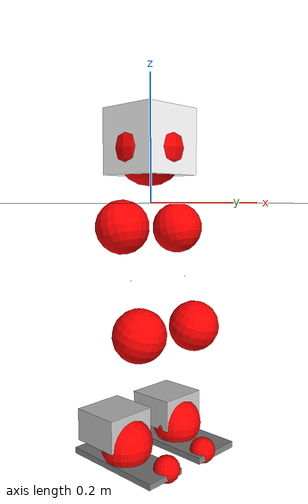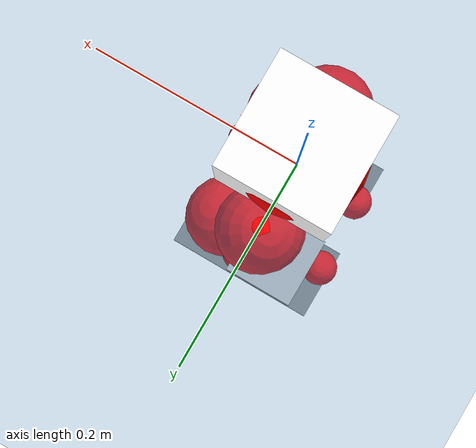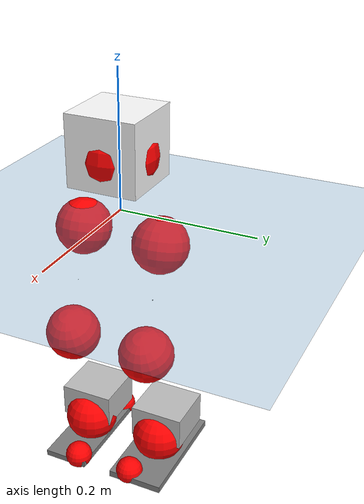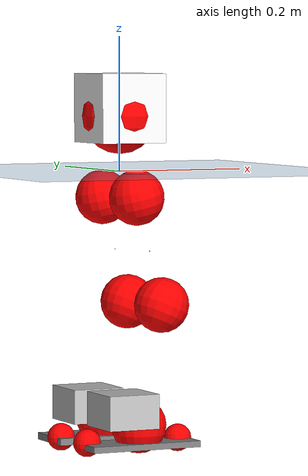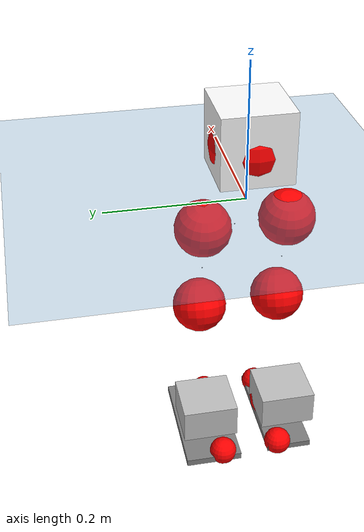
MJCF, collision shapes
<mujoco model="pi_12dof_release_v1">
  <compiler angle="radian" assetdir="assets" balanceinertia="true" inertiafromgeom="false"/>

  <option timestep="0.005" density="1.2" viscosity="2e-05"/>

  <size nkey="1"/>

  <visual>
    <quality shadowsize="8192"/>
    <map shadowclip="0.5"/>
  </visual>

  <default>
    <default class="/">
      <joint armature="0.01" damping="0.01" frictionloss="0.01"/>
      <geom contype="0" conaffinity="0" group="1" solref="-1000 -80"/>
      <site size="0.01 0.005 0.005" group="5"/>
      <general forcelimited="true" biastype="affine" gainprm="20" biasprm="0 -20 -0.5"/>
      <default class="foot">
        <geom size="0.0845 0.036 0.005" type="box" condim="6" group="4" priority="1" friction="0.9 0.2 0.2" solimp="0.015 1 0.005"/>
      </default>
      <default class="reward_collision_sphere">
        <geom group="5" rgba="1 0 0 1"/>
      </default>
    </default>
  </default>

  <asset>
    <texture type="skybox" colorspace="auto" name="//unnamed_texture_0" builtin="gradient" rgb1="0.95 0.95 0.95" rgb2="0.95 0.95 0.95" width="100" height="600"/>
    <texture type="2d" colorspace="auto" name="texplane" builtin="checker" rgb1="0.345 0.575 0.748" rgb2="0.345 0.575 0.748" markrgb="1 1 1" width="512" height="512"/>
    <material name="MatPlane" class="/" texture="texplane" texuniform="true" texrepeat="2 2" specular="0.9"/>
    <mesh name="baselink_1" class="/" file="baselink_1.STL"/>
    <mesh name="r_hip_pitch_link" class="/" file="r_hip_pitch_link.STL"/>
    <mesh name="r_hip_roll_link" class="/" file="r_hip_roll_link.STL"/>
    <mesh name="r_thigh_link" class="/" file="r_thigh_link.STL"/>
    <mesh name="r_calf_link" class="/" file="r_calf_link.STL"/>
    <mesh name="r_ankle_pitch_link" class="/" file="r_ankle_pitch_link.STL"/>
    <mesh name="r_ankle_roll_link" class="/" file="r_ankle_roll_link.STL"/>
    <mesh name="l_hip_pitch_link" class="/" file="l_hip_pitch_link.STL"/>
    <mesh name="l_hip_roll_link" class="/" file="l_hip_roll_link.STL"/>
    <mesh name="l_thigh_link" class="/" file="l_thigh_link.STL"/>
    <mesh name="l_calf_link" class="/" file="l_calf_link.STL"/>
    <mesh name="l_ankle_pitch_link" class="/" file="l_ankle_pitch_link.STL"/>
    <mesh name="l_ankle_roll_link" class="/" file="l_ankle_roll_link.STL"/>
  </asset>

  <worldbody>
    <geom name="floor" class="/" size="100 100 0.125" type="plane" group="0" material="MatPlane"/>
    <light name="toplight_shadow" class="/" pos="0 0 5" dir="0.0990148 0.0990148 -0.990148" type="directional" ambient="0.04 0.04 0.04" diffuse="0.55 0.55 0.55" specular="0.12 0.12 0.12"/>
    <light name="toplight_fill" class="/" pos="0 0 5" dir="0.0990148 0.0990148 -0.990148" type="directional" castshadow="false" ambient="0.04 0.04 0.04" diffuse="0.3 0.3 0.3" specular="0.08 0.08 0.08"/>
    <body name="trunk" pos="0.000108575 -0.00177627 0.000438961" quat="1 -4.47351e-07 8.47669e-07 1.05436e-07">
      <inertial pos="0.00149781 -0.00269025 0.0474218" quat="0.689746 0.0148812 0.000135384 0.723898" mass="2.30247" diaginertia="0.0153455 0.0030468 0.00934124"/>
      <joint name="//unnamed_joint_0" type="free"/>
      <geom name="//unnamed_geom_1" class="/" type="mesh" density="0" rgba="1 1 1 1" mesh="baselink_1"/>
      <geom name="//unnamed_geom_2" class="/" size="0.0512698 0.0512698 0.0512698" pos="0 0 0.0941107" type="box" rgba="1 1 1 1"/>
      <geom name="//unnamed_geom_3" class="reward_collision_sphere" size="0.0563967" pos="0 0 0.0823469"/>
      <site name="imu" class="/" pos="0.0081408 0.00182219 -0.00883407" size="0.010254"/>
      <camera name="track" class="/" pos="0 -1.6121 0" quat="0.707107 0.707107 0 0" mode="trackcom"/>
      <camera name="ego_camera" class="/" pos="0.0820312 0 0.211749" quat="-0.5 -0.5 0.5 0.5"/>
      <body name="r_hip_pitch_link" pos="0.000449701 -0.0157356 -0.0363259" quat="0.99217 -0.000637662 -0.12489 0.00058139">
        <inertial pos="0.000798507 -0.0448503 0.000439019" quat="-0.0194722 0.70581 -0.0269832 0.707619" mass="0.389891" diaginertia="0.000169685 3.24183e-05 0.00018819"/>
        <joint name="r_hip_pitch_joint" class="/" pos="0 0 0" axis="-0.00504047 -0.999972 -0.00544178" stiffness="0.000721005" range="-1.75076 1.24317" armature="0.0102503" damping="0.014038" frictionloss="0.0107644"/>
        <geom name="//unnamed_geom_4" class="/" type="mesh" density="0" rgba="0.75294 0.75294 0.75294 1" mesh="r_hip_pitch_link"/>
        <geom name="//unnamed_geom_5" class="/" size="0.000512698 0.000512698 0.000512698" type="box" rgba="0.75294 0.75294 0.75294 1"/>
        <body name="r_hip_roll_link" pos="-0.000297897 -0.0424002 -0.000229666" quat="1 -3.20128e-05 0.000514208 -0.000560819">
          <inertial pos="0.000486897 0.000432939 -0.072145" quat="0.703751 -0.0849996 -0.0920303 0.699314" mass="0.419198" diaginertia="0.000528846 9.52998e-05 0.000295029"/>
          <joint name="r_hip_roll_joint" class="/" pos="0 0 0" axis="-0.999992 0.000594322 -0.00394133" stiffness="0.00196402" range="-0.117737 0.537359" armature="0.00965013" damping="0.0083345" frictionloss="0.00996826"/>
          <geom name="//unnamed_geom_6" class="/" type="mesh" density="0" rgba="0.75294 0.75294 0.75294 1" mesh="r_hip_roll_link"/>
          <geom name="//unnamed_geom_7" class="/" size="0.000512698 0.000512698 0.000512698" type="box" rgba="0.75294 0.75294 0.75294 1"/>
          <geom name="//unnamed_geom_8" class="reward_collision_sphere" size="0.0410158"/>
          <body name="r_thigh_link" pos="-0.000173666 -0.00187076 -0.0813226" quat="1 5.16196e-05 -9.3786e-05 0.000231939">
            <inertial pos="0.0017744 0.000709127 -0.0584646" quat="0.73744 0.675413 9.31741e-05 -0.000181825" mass="0.121139" diaginertia="0.000191048 3.31742e-05 0.000125938"/>
            <joint name="r_thigh_joint" class="/" pos="0 0 0" axis="-0.00458929 0.00181003 -0.999988" range="-0.327356 0.59911" armature="0.0105562" damping="0.00680831" frictionloss="0.0100853"/>
            <geom name="//unnamed_geom_9" class="/" type="mesh" density="0" rgba="0.75294 0.75294 0.75294 1" mesh="r_thigh_link"/>
            <geom name="//unnamed_geom_10" class="/" size="0.000512698 0.000512698 0.000512698" type="box" rgba="0.75294 0.75294 0.75294 1"/>
            <body name="r_calf_link" pos="-0.00141735 -0.000972713 -0.0826596" quat="0.947657 -7.55207e-06 0.31929 4.0269e-05">
              <inertial pos="0.000287807 -0.00176963 -0.0830685" quat="0.999994 -0.000816631 0.000290252 0.00322755" mass="0.857076" diaginertia="0.00561765 0.00115859 0.000405098"/>
              <joint name="r_calf_joint" class="/" pos="0 0 0" axis="-0.000821054 -0.999997 -0.00251257" range="-1.59824 0.649645" armature="0.0107794" damping="0.0105375" frictionloss="0.010198"/>
              <geom name="//unnamed_geom_11" class="/" type="mesh" density="0" rgba="0.75294 0.75294 0.75294 1" mesh="r_calf_link"/>
              <geom name="//unnamed_geom_12" class="/" size="0.000512698 0.000512698 0.000512698" type="box" rgba="0.75294 0.75294 0.75294 1"/>
              <geom name="//unnamed_geom_13" class="reward_collision_sphere" size="0.0410158"/>
              <body name="r_ankle_pitch_link" pos="0.00308576 0.00300257 -0.164673" quat="0.980027 0.000160646 -0.198862 -4.21229e-05">
                <inertial pos="0.00517529 0.000310657 -0.000704338" quat="0.000447404 0.708547 -0.000787235 0.705664" mass="0.197928" diaginertia="0.000497303 7.75153e-05 0.000279711"/>
                <joint name="r_ankle_pitch_joint" class="/" pos="0 0 0" axis="-0.0125253 -0.999904 -0.00594525" range="-1.30215 0.55194" armature="0.0104873" damping="0.0143825" frictionloss="0.0107015"/>
                <geom name="//unnamed_geom_14" class="/" type="mesh" density="0" rgba="0.75294 0.75294 0.75294 1" mesh="r_ankle_pitch_link"/>
                <geom name="//unnamed_geom_15" class="/" size="0.0399904 0.0410158 0.0256349" type="box" rgba="0.75294 0.75294 0.75294 1"/>
                <body name="r_ankle_roll_link" pos="0.0809616 0.00163445 -0.00104453" quat="0.999999 -0.000666482 -0.000362696 -0.000877689">
                  <inertial pos="-0.0268101 -0.00035198 -0.0158887" quat="0.558007 0.433611 0.434111 0.55871" mass="0.563029" diaginertia="0.00175346 0.000352171 0.000630592"/>
                  <joint name="r_ankle_roll_joint" class="/" pos="0 0 0" axis="-1 -4.6529e-05 0.000337366" range="-0.202618 0.143961" armature="0.0101381" damping="0.0131018" frictionloss="0.010256"/>
                  <geom name="//unnamed_geom_16" class="/" type="mesh" density="0" rgba="0.75294 0.75294 0.75294 1" mesh="r_ankle_roll_link"/>
                  <geom name="//unnamed_geom_17" class="/" type="mesh" rgba="0.75294 0.75294 0.75294 1" mesh="r_ankle_roll_link"/>
                  <geom name="right_foot" class="foot" size="0.0863534 0.0337315 0.00461968" pos="-0.0557812 0 -0.0517609"/>
                  <geom name="//unnamed_geom_19" class="reward_collision_sphere" size="0.0410158" pos="-0.0546875 0 -0.0235277"/>
                  <geom name="//unnamed_geom_20" class="reward_collision_sphere" size="0.0205079" pos="0.0164062 0.016121 -0.0470553"/>
                  <geom name="//unnamed_geom_21" class="reward_collision_sphere" size="0.0205079" pos="-0.13125 0.016121 -0.0470553"/>
                  <site name="right_foot" class="foot" pos="-0.0557812 0 -0.0517609" size="0.010254"/>
                </body>
              </body>
            </body>
          </body>
        </body>
      </body>
      <body name="l_hip_pitch_link" pos="-0.000254139 0.0181799 -0.0384674" quat="0.992138 0.000117528 -0.125145 -0.000131771">
        <inertial pos="0.000595387 0.0412408 -0.000506621" quat="-0.0436847 0.706214 0.0305563 0.705988" mass="0.411402" diaginertia="0.000199826 3.54593e-05 0.000225918"/>
        <joint name="l_hip_pitch_joint" class="/" pos="0 0 0" axis="-0.000258151 0.999999 -0.00102146" stiffness="0.00584204" range="-1.24475 1.75718" armature="0.00992452" damping="0" frictionloss="0.0108158"/>
        <geom name="//unnamed_geom_22" class="/" type="mesh" density="0" rgba="0.75294 0.75294 0.75294 1" mesh="l_hip_pitch_link"/>
        <geom name="//unnamed_geom_23" class="/" size="0.000512698 0.000512698 0.000512698" type="box" rgba="0.75294 0.75294 0.75294 1"/>
        <body name="l_hip_roll_link" pos="-0.000195545 0.0451318 -0.00242952" quat="1 0.000200187 7.17917e-05 -0.000131608">
          <inertial pos="-0.00153498 -0.00042607 -0.0743735" quat="0.699019 -0.073023 -0.0777732 0.7071" mass="0.428072" diaginertia="0.000522683 9.27255e-05 0.00028487"/>
          <joint name="l_hip_roll_joint" class="/" pos="0 0 0" axis="-0.999977 0.00534194 0.00407603" range="-0.552018 0.11925" armature="0.0112625" damping="0.00427603" frictionloss="0.00981784"/>
          <geom name="//unnamed_geom_24" class="/" type="mesh" density="0" rgba="0.75294 0.75294 0.75294 1" mesh="l_hip_roll_link"/>
          <geom name="//unnamed_geom_25" class="/" size="0.000512698 0.000512698 0.000512698" type="box" rgba="0.75294 0.75294 0.75294 1"/>
          <geom name="//unnamed_geom_26" class="reward_collision_sphere" size="0.0410158"/>
          <body name="l_thigh_link" pos="-0.000653838 -0.00295354 -0.0813011" quat="1 0.000400136 8.85171e-05 0.000126174">
            <inertial pos="0.000152212 -0.00150424 -0.0547889" quat="0.674415 0.738349 0.001954 -0.00113825" mass="0.123498" diaginertia="0.000202768 3.22419e-05 0.000131645"/>
            <joint name="l_thigh_joint" class="/" pos="0 0 0" axis="-0.00121279 2.63887e-05 -0.999999" stiffness="0.000485528" range="-0.602256 0.301362" armature="0.00984142" damping="0.00521619" frictionloss="0.0101522"/>
            <geom name="//unnamed_geom_27" class="/" type="mesh" density="0" rgba="0.75294 0.75294 0.75294 1" mesh="l_thigh_link"/>
            <geom name="//unnamed_geom_28" class="/" size="0.000512698 0.000512698 0.000512698" type="box" rgba="0.75294 0.75294 0.75294 1"/>
            <body name="l_calf_link" pos="-9.77489e-05 -1.6229e-05 -0.0827001" quat="0.947668 -0.000643594 0.319257 -0.000848782">
              <inertial pos="-0.00068142 0.00456279 -0.0839178" quat="0.999968 -0.000581916 0.000349965 0.00798464" mass="0.886601" diaginertia="0.00565309 0.00118396 0.000407615"/>
              <joint name="l_calf_joint" class="/" pos="0 0 0" axis="0.00197993 0.999987 -0.00465604" range="-0.667894 1.66766" armature="0.00969295" damping="0.00307066" frictionloss="0.00976942"/>
              <geom name="//unnamed_geom_29" class="/" type="mesh" density="0" rgba="0.75294 0.75294 0.75294 1" mesh="l_calf_link"/>
              <geom name="//unnamed_geom_30" class="/" size="0.000512698 0.000512698 0.000512698" type="box" rgba="0.75294 0.75294 0.75294 1"/>
              <geom name="//unnamed_geom_31" class="reward_collision_sphere" size="0.0410158"/>
              <body name="l_ankle_pitch_link" pos="-0.000292077 0.00300371 -0.165012" quat="0.979987 0.000479132 -0.199058 -0.00108679">
                <inertial pos="0.00533285 -0.00311026 0.000187135" quat="0.00115802 0.705403 0.00332409 0.708798" mass="0.18942" diaginertia="0.000480925 7.51472e-05 0.000268187"/>
                <joint name="l_ankle_pitch_joint" class="/" pos="0 0 0" axis="-3.84711e-05 1 0.000208028" range="-0.547259 1.32415" armature="0.010412" damping="0.00290978" frictionloss="0.0102898"/>
                <geom name="//unnamed_geom_32" class="/" type="mesh" density="0" rgba="0.75294 0.75294 0.75294 1" mesh="l_ankle_pitch_link"/>
                <geom name="//unnamed_geom_33" class="/" size="0.0399904 0.0410158 0.0256349" type="box" rgba="0.75294 0.75294 0.75294 1"/>
                <body name="l_ankle_roll_link" pos="0.0798327 -0.000861551 0.00103331" quat="1 9.58346e-05 6.75614e-05 -4.71711e-05">
                  <inertial pos="-0.0238837 -0.000519117 -0.0160389" quat="0.558925 0.433983 0.432035 0.559114" mass="0.553265" diaginertia="0.00181955 0.000354255 0.000629752"/>
                  <joint name="l_ankle_roll_joint" class="/" pos="0 0 0" axis="-0.999908 0.00599202 0.0121403" range="-0.100436 0.121161" armature="0.0114922" damping="0.0228047" frictionloss="0.00911821"/>
                  <geom name="//unnamed_geom_34" class="/" type="mesh" density="0" rgba="0.75294 0.75294 0.75294 1" mesh="l_ankle_roll_link"/>
                  <geom name="//unnamed_geom_35" class="/" type="mesh" rgba="0.75294 0.75294 0.75294 1" mesh="l_ankle_roll_link"/>
                  <geom name="left_foot" class="foot" size="0.0879891 0.04212 0.00513996" pos="-0.0557812 0 -0.0517609"/>
                  <geom name="//unnamed_geom_37" class="reward_collision_sphere" size="0.0410158" pos="-0.0546875 0 -0.0235277"/>
                  <geom name="//unnamed_geom_38" class="reward_collision_sphere" size="0.0205079" pos="0.0164062 -0.016121 -0.0470553"/>
                  <geom name="//unnamed_geom_39" class="reward_collision_sphere" size="0.0205079" pos="-0.13125 -0.016121 -0.0470553"/>
                  <site name="left_foot" class="foot" pos="-0.0557812 0 -0.0517609" size="0.010254"/>
                </body>
              </body>
            </body>
          </body>
        </body>
      </body>
    </body>
  </worldbody>

  <contact>
    <pair class="/" geom1="floor" geom2="right_foot" name="//unnamed_contact_1"/>
    <pair class="/" geom1="floor" geom2="left_foot" name="//unnamed_contact_0"/>
  </contact>

  <actuator>
    <general name="r_hip_pitch_joint" class="/" joint="r_hip_pitch_joint" forcerange="-22.4021 22.4021" gainprm="20.2883" biasprm="0 -20.2883 -0.518078"/>
    <general name="r_hip_roll_joint" class="/" joint="r_hip_roll_joint" forcerange="-21.6861 21.6861" gainprm="20.2883" biasprm="0 -20.2883 -0.518078"/>
    <general name="r_thigh_joint" class="/" joint="r_thigh_joint" forcerange="-22.5501 22.5501" gainprm="20.2883" biasprm="0 -20.2883 -0.518078"/>
    <general name="r_calf_joint" class="/" joint="r_calf_joint" forcerange="-19.6079 19.6079" gainprm="20.2883" biasprm="0 -20.2883 -0.518078"/>
    <general name="r_ankle_pitch_joint" class="/" joint="r_ankle_pitch_joint" forcerange="-23.5674 23.5674" gainprm="20.2883" biasprm="0 -20.2883 -0.518078"/>
    <general name="r_ankle_roll_joint" class="/" joint="r_ankle_roll_joint" forcerange="-23.5794 23.5794" gainprm="20.2883" biasprm="0 -20.2883 -0.518078"/>
    <general name="l_hip_pitch_joint" class="/" joint="l_hip_pitch_joint" forcerange="-23.6682 23.6682" gainprm="20.2883" biasprm="0 -20.2883 -0.518078"/>
    <general name="l_hip_roll_joint" class="/" joint="l_hip_roll_joint" forcerange="-20.6518 20.6518" gainprm="20.2883" biasprm="0 -20.2883 -0.518078"/>
    <general name="l_thigh_joint" class="/" joint="l_thigh_joint" forcerange="-22.3945 22.3945" gainprm="20.2883" biasprm="0 -20.2883 -0.518078"/>
    <general name="l_calf_joint" class="/" joint="l_calf_joint" forcerange="-23.5815 23.5815" gainprm="20.2883" biasprm="0 -20.2883 -0.518078"/>
    <general name="l_ankle_pitch_joint" class="/" joint="l_ankle_pitch_joint" forcerange="-23.5739 23.5739" gainprm="20.2883" biasprm="0 -20.2883 -0.518078"/>
    <general name="l_ankle_roll_joint" class="/" joint="l_ankle_roll_joint" forcerange="-22.3398 22.3398" gainprm="20.2883" biasprm="0 -20.2883 -0.518078"/>
  </actuator>

  <sensor>
    <gyro site="imu" name="imu_angular_velocity"/>
    <velocimeter site="imu" name="imu_linear_velocity"/>
    <framelinvel objtype="site" objname="left_foot" name="left_foot_global_linear_velocity"/>
    <framelinvel objtype="site" objname="right_foot" name="right_foot_global_linear_velocity"/>
  </sensor>

  <keyframe>
    <key name="home" qpos="0 0 0.291 1 0 0 0 0.4 0 0 -0.8 0.4 0 -0.4 0 0 0.8 -0.4 0"/>
  </keyframe>
</mujoco>
